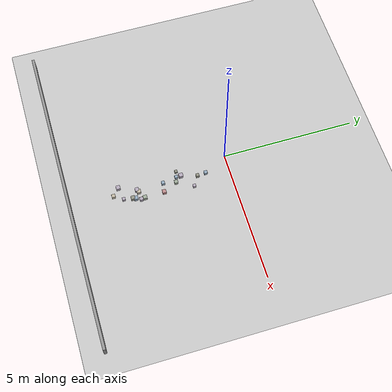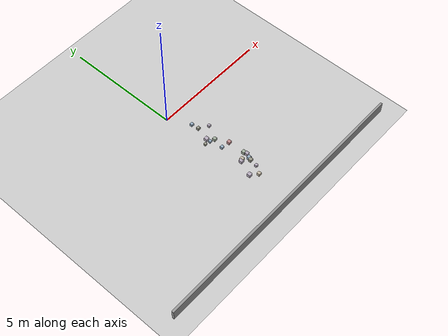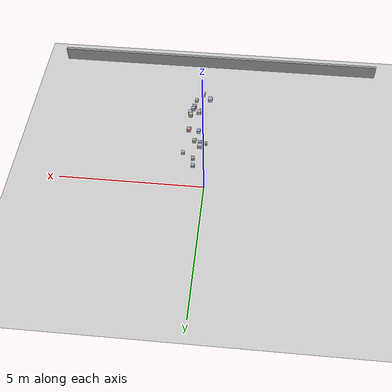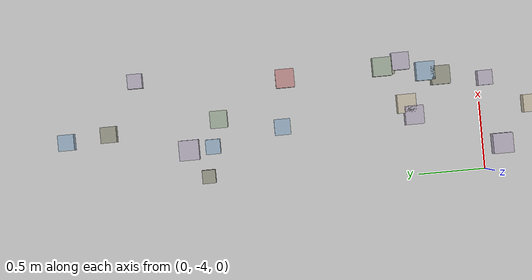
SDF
<sdf version="1.6">
 <world name="small_maze_world">
  <include><uri>model://ground_plane</uri></include>
  <include><uri>model://sun</uri></include>
  <model name="wall_south">
   <static>true</static>
   <pose>0 -6 0.25 0 0 0</pose>
   <link name="link">
    <collision name="collision"><geometry><box><size>12 0.1 0.5</size></box></geometry></collision>
    <visual name="visual">
     <geometry><box><size>12 0.1 0.5</size></box></geometry>
     <material><ambient>0.6 0.6 0.6 1</ambient></material>
    </visual>
   </link>
  </model>
  <model name="box_44">
   <static>false</static>
   <pose>0.77 -3.61 0.05 0 0 0</pose>
   <link name="link">
    <inertial>
     <mass>0.2</mass>
     <inertia><ixx>0.001</ixx><iyy>0.001</iyy><izz>0.001</izz><ixy>0</ixy><ixz>0</ixz><iyz>0</iyz></inertia>
    </inertial>
    <collision name="collision"><geometry><box><size>0.14 0.14 0.14</size></box></geometry></collision>
    <visual name="visual">
     <geometry><box><size>0.14 0.14 0.14</size></box></geometry>
     <material><ambient>0.6 0.69 0.77 1</ambient><diffuse>0.6 0.69 0.77 1</diffuse></material>
    </visual>
   </link>
  </model>
  <model name="box_57">
   <static>false</static>
   <pose>0.13 -1.93 0.05 0 0 0</pose>
   <link name="link">
    <inertial>
     <mass>0.2</mass>
     <inertia><ixx>0.001</ixx><iyy>0.001</iyy><izz>0.001</izz><ixy>0</ixy><ixz>0</ixz><iyz>0</iyz></inertia>
    </inertial>
    <collision name="collision"><geometry><box><size>0.1 0.1 0.1</size></box></geometry></collision>
    <visual name="visual">
     <geometry><box><size>0.1 0.1 0.1</size></box></geometry>
     <material><ambient>0.6 0.6 0.54 1</ambient><diffuse>0.6 0.6 0.54 1</diffuse></material>
    </visual>
   </link>
  </model>
  <model name="box_62">
   <static>false</static>
   <pose>0.48 -0.89 0.05 0 0 0</pose>
   <link name="link">
    <inertial>
     <mass>0.2</mass>
     <inertia><ixx>0.001</ixx><iyy>0.001</iyy><izz>0.001</izz><ixy>0</ixy><ixz>0</ixz><iyz>0</iyz></inertia>
    </inertial>
    <collision name="collision"><geometry><box><size>0.12 0.12 0.12</size></box></geometry></collision>
    <visual name="visual">
     <geometry><box><size>0.12 0.12 0.12</size></box></geometry>
     <material><ambient>0.6 0.69 0.77 1</ambient><diffuse>0.6 0.69 0.77 1</diffuse></material>
    </visual>
   </link>
  </model>
  <model name="box_83">
   <static>false</static>
   <pose>0.55 -2.04 0.05 0 0 0</pose>
   <link name="link">
    <inertial>
     <mass>0.2</mass>
     <inertia><ixx>0.001</ixx><iyy>0.001</iyy><izz>0.001</izz><ixy>0</ixy><ixz>0</ixz><iyz>0</iyz></inertia>
    </inertial>
    <collision name="collision"><geometry><box><size>0.13 0.13 0.13</size></box></geometry></collision>
    <visual name="visual">
     <geometry><box><size>0.13 0.13 0.13</size></box></geometry>
     <material><ambient>0.64 0.69 0.62 1</ambient><diffuse>0.64 0.69 0.62 1</diffuse></material>
    </visual>
   </link>
  </model>
  <model name="box_112">
   <static>false</static>
   <pose>0.51 -1.21 0.05 0 0 0</pose>
   <link name="link">
    <inertial>
     <mass>0.2</mass>
     <inertia><ixx>0.001</ixx><iyy>0.001</iyy><izz>0.001</izz><ixy>0</ixy><ixz>0</ixz><iyz>0</iyz></inertia>
    </inertial>
    <collision name="collision"><geometry><box><size>0.12 0.12 0.12</size></box></geometry></collision>
    <visual name="visual">
     <geometry><box><size>0.12 0.12 0.12</size></box></geometry>
     <material><ambient>0.6 0.6 0.54 1</ambient><diffuse>0.6 0.6 0.54 1</diffuse></material>
    </visual>
   </link>
  </model>
  <model name="box_123">
   <static>false</static>
   <pose>0.73 -3.72 0.05 0 0 0</pose>
   <link name="link">
    <inertial>
     <mass>0.2</mass>
     <inertia><ixx>0.001</ixx><iyy>0.001</iyy><izz>0.001</izz><ixy>0</ixy><ixz>0</ixz><iyz>0</iyz></inertia>
    </inertial>
    <collision name="collision"><geometry><box><size>0.14 0.14 0.14</size></box></geometry></collision>
    <visual name="visual">
     <geometry><box><size>0.14 0.14 0.14</size></box></geometry>
     <material><ambient>0.6 0.6 0.54 1</ambient><diffuse>0.6 0.6 0.54 1</diffuse></material>
    </visual>
   </link>
  </model>
  <model name="box_128">
   <static>false</static>
   <pose>0.45 -3.5 0.05 0 0 0</pose>
   <link name="link">
    <inertial>
     <mass>0.2</mass>
     <inertia><ixx>0.001</ixx><iyy>0.001</iyy><izz>0.001</izz><ixy>0</ixy><ixz>0</ixz><iyz>0</iyz></inertia>
    </inertial>
    <collision name="collision"><geometry><box><size>0.14 0.14 0.14</size></box></geometry></collision>
    <visual name="visual">
     <geometry><box><size>0.14 0.14 0.14</size></box></geometry>
     <material><ambient>0.72 0.68 0.75 1</ambient><diffuse>0.72 0.68 0.75 1</diffuse></material>
    </visual>
   </link>
  </model>
  <model name="box_164">
   <static>false</static>
   <pose>0.46 -4.38 0.05 0 0 0</pose>
   <link name="link">
    <inertial>
     <mass>0.2</mass>
     <inertia><ixx>0.001</ixx><iyy>0.001</iyy><izz>0.001</izz><ixy>0</ixy><ixz>0</ixz><iyz>0</iyz></inertia>
    </inertial>
    <collision name="collision"><geometry><box><size>0.13 0.13 0.13</size></box></geometry></collision>
    <visual name="visual">
     <geometry><box><size>0.13 0.13 0.13</size></box></geometry>
     <material><ambient>0.78 0.74 0.66 1</ambient><diffuse>0.78 0.74 0.66 1</diffuse></material>
    </visual>
   </link>
  </model>
  <model name="box_187">
   <static>false</static>
   <pose>0.35 -1.98 0.05 0 0 0</pose>
   <link name="link">
    <inertial>
     <mass>0.2</mass>
     <inertia><ixx>0.001</ixx><iyy>0.001</iyy><izz>0.001</izz><ixy>0</ixy><ixz>0</ixz><iyz>0</iyz></inertia>
    </inertial>
    <collision name="collision"><geometry><box><size>0.11 0.11 0.11</size></box></geometry></collision>
    <visual name="visual">
     <geometry><box><size>0.11 0.11 0.11</size></box></geometry>
     <material><ambient>0.6 0.69 0.77 1</ambient><diffuse>0.6 0.69 0.77 1</diffuse></material>
    </visual>
   </link>
  </model>
  <model name="box_219">
   <static>false</static>
   <pose>0.45 -2.51 0.05 0 0 0</pose>
   <link name="link">
    <inertial>
     <mass>0.2</mass>
     <inertia><ixx>0.001</ixx><iyy>0.001</iyy><izz>0.001</izz><ixy>0</ixy><ixz>0</ixz><iyz>0</iyz></inertia>
    </inertial>
    <collision name="collision"><geometry><box><size>0.12 0.12 0.12</size></box></geometry></collision>
    <visual name="visual">
     <geometry><box><size>0.12 0.12 0.12</size></box></geometry>
     <material><ambient>0.6 0.69 0.77 1</ambient><diffuse>0.6 0.69 0.77 1</diffuse></material>
    </visual>
   </link>
  </model>
  <model name="box_244">
   <static>false</static>
   <pose>0.18 -4.14 0.05 0 0 0</pose>
   <link name="link">
    <inertial>
     <mass>0.2</mass>
     <inertia><ixx>0.001</ixx><iyy>0.001</iyy><izz>0.001</izz><ixy>0</ixy><ixz>0</ixz><iyz>0</iyz></inertia>
    </inertial>
    <collision name="collision"><geometry><box><size>0.15 0.15 0.15</size></box></geometry></collision>
    <visual name="visual">
     <geometry><box><size>0.15 0.15 0.15</size></box></geometry>
     <material><ambient>0.72 0.68 0.75 1</ambient><diffuse>0.72 0.68 0.75 1</diffuse></material>
    </visual>
   </link>
  </model>
  <model name="box_258">
   <static>false</static>
   <pose>0.34 -1.8 0.05 0 0 0</pose>
   <link name="link">
    <inertial>
     <mass>0.2</mass>
     <inertia><ixx>0.001</ixx><iyy>0.001</iyy><izz>0.001</izz><ixy>0</ixy><ixz>0</ixz><iyz>0</iyz></inertia>
    </inertial>
    <collision name="collision"><geometry><box><size>0.15 0.15 0.15</size></box></geometry></collision>
    <visual name="visual">
     <geometry><box><size>0.15 0.15 0.15</size></box></geometry>
     <material><ambient>0.72 0.68 0.75 1</ambient><diffuse>0.72 0.68 0.75 1</diffuse></material>
    </visual>
   </link>
  </model>
  <model name="box_274">
   <static>false</static>
   <pose>0.89 -1.44 0.05 0 0 0</pose>
   <link name="link">
    <inertial>
     <mass>0.2</mass>
     <inertia><ixx>0.001</ixx><iyy>0.001</iyy><izz>0.001</izz><ixy>0</ixy><ixz>0</ixz><iyz>0</iyz></inertia>
    </inertial>
    <collision name="collision"><geometry><box><size>0.11 0.11 0.11</size></box></geometry></collision>
    <visual name="visual">
     <geometry><box><size>0.11 0.11 0.11</size></box></geometry>
     <material><ambient>0.72 0.68 0.75 1</ambient><diffuse>0.72 0.68 0.75 1</diffuse></material>
    </visual>
   </link>
  </model>
  <model name="box_318">
   <static>false</static>
   <pose>0.83 -3.29 0.05 0 0 0</pose>
   <link name="link">
    <inertial>
     <mass>0.2</mass>
     <inertia><ixx>0.001</ixx><iyy>0.001</iyy><izz>0.001</izz><ixy>0</ixy><ixz>0</ixz><iyz>0</iyz></inertia>
    </inertial>
    <collision name="collision"><geometry><box><size>0.14 0.14 0.14</size></box></geometry></collision>
    <visual name="visual">
     <geometry><box><size>0.14 0.14 0.14</size></box></geometry>
     <material><ambient>0.64 0.69 0.62 1</ambient><diffuse>0.64 0.69 0.62 1</diffuse></material>
    </visual>
   </link>
  </model>
  <model name="box_320">
   <static>false</static>
   <pose>0.68 -4.05 0.05 0 0 0</pose>
   <link name="link">
    <inertial>
     <mass>0.2</mass>
     <inertia><ixx>0.001</ixx><iyy>0.001</iyy><izz>0.001</izz><ixy>0</ixy><ixz>0</ixz><iyz>0</iyz></inertia>
    </inertial>
    <collision name="collision"><geometry><box><size>0.11 0.11 0.11</size></box></geometry></collision>
    <visual name="visual">
     <geometry><box><size>0.11 0.11 0.11</size></box></geometry>
     <material><ambient>0.72 0.68 0.75 1</ambient><diffuse>0.72 0.68 0.75 1</diffuse></material>
    </visual>
   </link>
  </model>
  <model name="box_323">
   <static>false</static>
   <pose>0.81 -2.56 0.05 0 0 0</pose>
   <link name="link">
    <inertial>
     <mass>0.2</mass>
     <inertia><ixx>0.001</ixx><iyy>0.001</iyy><izz>0.001</izz><ixy>0</ixy><ixz>0</ixz><iyz>0</iyz></inertia>
    </inertial>
    <collision name="collision"><geometry><box><size>0.14 0.14 0.14</size></box></geometry></collision>
    <visual name="visual">
     <geometry><box><size>0.14 0.14 0.14</size></box></geometry>
     <material><ambient>0.76 0.56 0.56 1</ambient><diffuse>0.76 0.56 0.56 1</diffuse></material>
    </visual>
   </link>
  </model>
  <model name="box_364">
   <static>false</static>
   <pose>0.83 -3.32 0.05 0 0 0</pose>
   <link name="link">
    <inertial>
     <mass>0.2</mass>
     <inertia><ixx>0.001</ixx><iyy>0.001</iyy><izz>0.001</izz><ixy>0</ixy><ixz>0</ixz><iyz>0</iyz></inertia>
    </inertial>
    <collision name="collision"><geometry><box><size>0.12 0.12 0.12</size></box></geometry></collision>
    <visual name="visual">
     <geometry><box><size>0.12 0.12 0.12</size></box></geometry>
     <material><ambient>0.6 0.6 0.54 1</ambient><diffuse>0.6 0.6 0.54 1</diffuse></material>
    </visual>
   </link>
  </model>
  <model name="box_367">
   <static>false</static>
   <pose>0.86 -3.43 0.05 0 0 0</pose>
   <link name="link">
    <inertial>
     <mass>0.2</mass>
     <inertia><ixx>0.001</ixx><iyy>0.001</iyy><izz>0.001</izz><ixy>0</ixy><ixz>0</ixz><iyz>0</iyz></inertia>
    </inertial>
    <collision name="collision"><geometry><box><size>0.13 0.13 0.13</size></box></geometry></collision>
    <visual name="visual">
     <geometry><box><size>0.13 0.13 0.13</size></box></geometry>
     <material><ambient>0.72 0.68 0.75 1</ambient><diffuse>0.72 0.68 0.75 1</diffuse></material>
    </visual>
   </link>
  </model>
  <model name="box_394">
   <static>false</static>
   <pose>0.54 -3.45 0.05 0 0 0</pose>
   <link name="link">
    <inertial>
     <mass>0.2</mass>
     <inertia><ixx>0.001</ixx><iyy>0.001</iyy><izz>0.001</izz><ixy>0</ixy><ixz>0</ixz><iyz>0</iyz></inertia>
    </inertial>
    <collision name="collision"><geometry><box><size>0.14 0.14 0.14</size></box></geometry></collision>
    <visual name="visual">
     <geometry><box><size>0.14 0.14 0.14</size></box></geometry>
     <material><ambient>0.78 0.74 0.66 1</ambient><diffuse>0.78 0.74 0.66 1</diffuse></material>
    </visual>
   </link>
  </model>
 </world>
</sdf>
